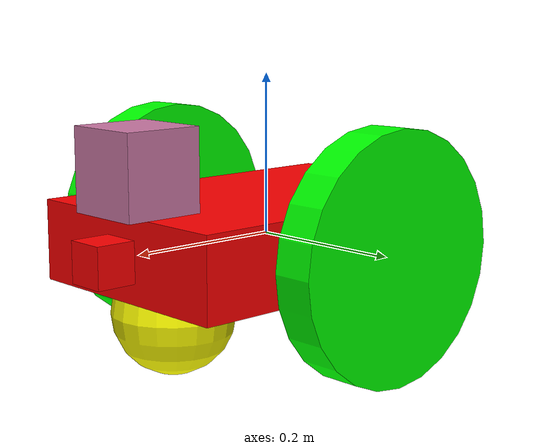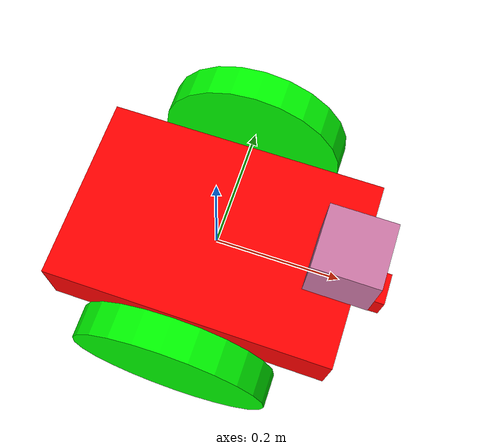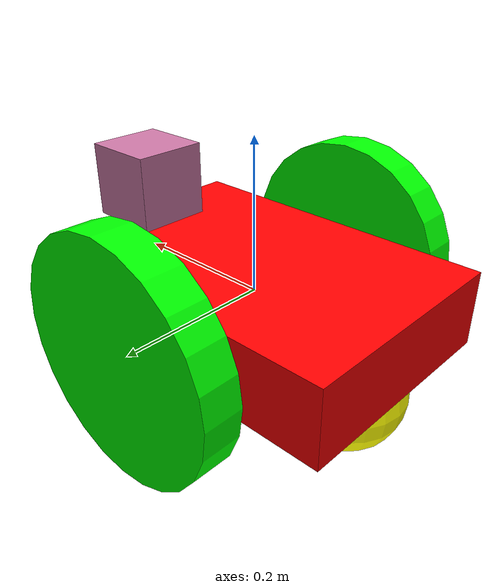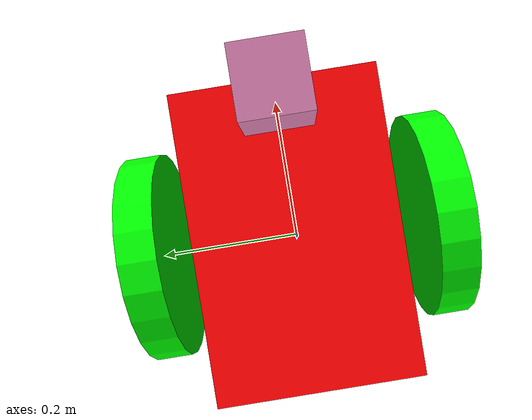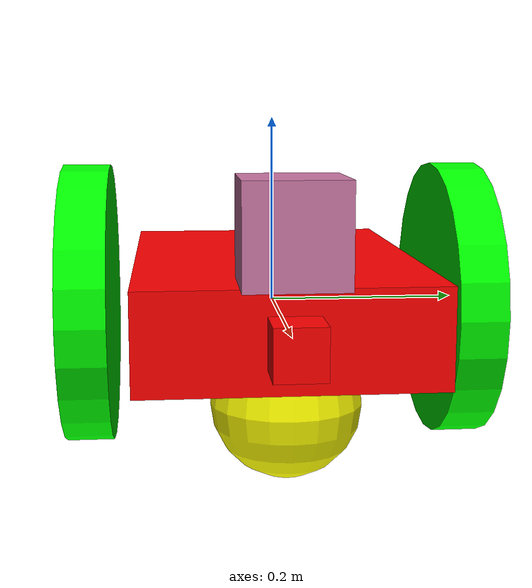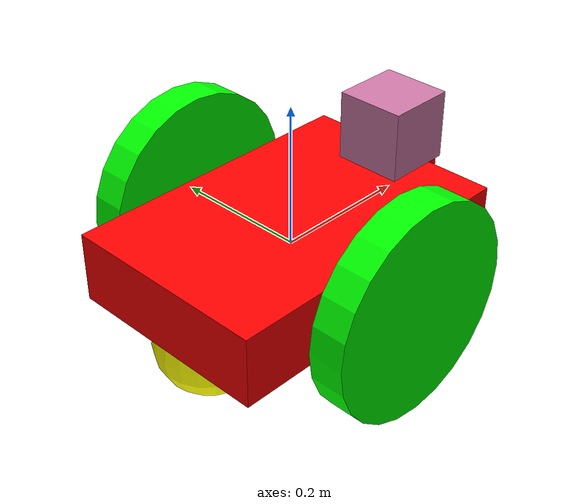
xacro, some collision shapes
<?xml version='1.0'?>
<robot name="my_robot" xmlns:xacro="http://www.ros.org/wiki/xacro">

  <xacro:include filename="$(find my_robot)/urdf/my_robot.gazebo" />
  <link name="robot_footprint"></link>
  <joint name="robot_footprint_joint" type="fixed">
    <origin xyz="0 0 0" rpy="0 0 0" />
    <parent link="robot_footprint"/>
    <child link="chassis" />
  </joint>

  <link name="chassis">
    <pose>0 0 0.1 0 0 0</pose>

    <inertial>
      <mass value="15.0"/>
      <origin xyz="0.0 0 0" rpy="0 0 0"/>
      <inertia
          ixx="0.1" ixy="0" ixz="0"
          iyy="0.1" iyz="0"
          izz="0.1"
      />
    </inertial>

    <collision name="collision">
      <origin xyz="0 0 0" rpy="0 0 0"/>
      <geometry>
        <box size="0.45 0.3 0.1"/>
      </geometry>
    </collision>

    <visual name="chassis_visual">
      <origin xyz="0 0 0" rpy="0 0 0"/>
      <geometry>
        <box size="0.45 0.3 0.1"/>
      </geometry>
      <material name="bright_red">
        <color rgba="1 0 0 1"/>
      </material>
    </visual>

    <collision name="back_caster_collision">
      <origin xyz="-0.15 0 -0.075" rpy="0 0 0"/>
      <geometry>
        <sphere radius="0.0749"/>
      </geometry>
    </collision>
    <visual name="back_caster_visual">
      <origin xyz="-0.15 0 -0.075" rpy="0 0 0"/>
      <geometry>
        <sphere radius="0.075"/>
      </geometry>
      <material name="">
        <color rgba="1 1 0 1"/>
      </material>
    </visual>

    <collision name="front_caster_collision">
      <origin xyz="0.15 0 -0.075" rpy="0 0 0"/>
      <geometry>
        <sphere radius="0.0749"/>
      </geometry>
    </collision>
    <visual name="front_caster_visual">
      <origin xyz="0.15 0 -0.075" rpy="0 0 0"/>
      <geometry>
        <sphere radius="0.075"/>
      </geometry>
      <material name="">
        <color rgba="1 1 0 1"/>
      </material>
    </visual>
  </link>
  <link name="left_wheel">
    <inertial>
      <mass value="5.0"/>
      <origin xyz="0 0 0" rpy="0 0 0"/>
      <inertia
          ixx="0.1" ixy="0" ixz="0"
          iyy="0.1" iyz="0"
          izz="0.1"
      />
    </inertial>
    <collision name="left_wheel_collision">
      <origin xyz="0 0 0" rpy="0 1.5707 1.5707"/>
      <geometry>
        <cylinder radius="0.15" length="0.05"/>
      </geometry>
    </collision>
    <visual name="left_wheel_visual">
      <origin xyz="0 0 0" rpy="0 1.5707 1.5707"/>
      <geometry>
        <cylinder radius="0.15" length="0.05"/>
      </geometry>
      <material name="Green">
        <color rgba="0 1 0 1"/>
      </material>
    </visual>
  </link>

  <!-- LEFT WHEEL JOINT -->
  <joint type="continuous" name="left_wheel_hinge">
    <origin xyz="0 0.2 0" rpy="0 0 0"/>
    <child link="left_wheel"/>
    <parent link="chassis"/>
    <axis xyz="0 1 0"/>
    <limit effort="10000" velocity="1000"/>
    <dynamics damping="1.0" friction="1.0"/>
  </joint>

  <!-- RIGHT WHEEL LINK -->
  <link name="right_wheel">
    <inertial>
      <mass value="5.0"/>
      <origin xyz="0 0 0" rpy="0 0 0"/>
      <inertia
          ixx="0.1" ixy="0" ixz="0"
          iyy="0.1" iyz="0"
          izz="0.1"
      />
    </inertial>
    <collision name="right_wheel_collision">
      <origin xyz="0 0 0" rpy="0 1.5708 1.5708"/>
      <geometry>
        <!-- Wheel radius remains 0.15 -->
        <cylinder radius="0.15" length="0.05"/>
      </geometry>
    </collision>
    <visual name="right_wheel_visual">
      <origin xyz="0 0 0" rpy="0 1.5707 1.5707"/>
      <geometry>
        <cylinder radius="0.15" length="0.05"/>
      </geometry>
      <!-- Green wheels -->
      <material name="Green">
        <color rgba="0 1 0 1"/>
      </material>
    </visual>
  </link>

  <!-- RIGHT WHEEL JOINT -->
  <joint type="continuous" name="right_wheel_hinge">
    <origin xyz="0 -0.2 0" rpy="0 0 0"/>
    <child link="right_wheel"/>
    <parent link="chassis"/>
    <axis xyz="0 1 0"/>
    <limit effort="10000" velocity="1000"/>
    <dynamics damping="1.0" friction="1.0"/>
  </joint>

  <!-- CAMERA LINK -->
  <link name="camera">
    <inertial>
      <mass value="0.1"/>
      <origin xyz="0 0 0" rpy="0 0 0"/>
      <inertia
          ixx="1e-6" ixy="0" ixz="0"
          iyy="1e-6" iyz="0"
          izz="1e-6"
      />
    </inertial>
    <collision>
      <origin xyz="0 0 0" rpy="0 0 0"/>
      <geometry>
        <box size="0.05 0.05 0.05"/>
      </geometry>
    </collision>
    <visual>
      <origin xyz="0 0 0" rpy="0 0 0"/>
      <geometry>
        <box size="0.05 0.05 0.05"/>
      </geometry>
      <material name="Red">
        <color rgba="1 0 0 1"/>
      </material>
    </visual>
  </link>

  <!-- CAMERA JOINT -->
  <joint name="camera_joint" type="fixed">
    <origin xyz="0.25 0 0" rpy="0 0 0"/>
    <parent link="chassis"/>
    <child link="camera"/>
    <axis xyz="0 1 0"/>
  </joint>

  <!-- CAMERA OPTICAL JOINT-->
  <joint name="camera_optical_joint" type="fixed">
    <origin xyz="0 0 0" rpy="-1.5707 0 -1.5707"/>
    <parent link="camera"/>
    <child link="camera_link_optical"/>
  </joint>

  <!-- CAMERA OPTICAL LINK -->
  <link name="camera_link_optical">
  </link>

  <!-- HOKUYO LIDAR LINK -->
  <link name="hokuyo">
    <inertial>
      <mass value="1e-5"/>
      <origin xyz="0 0 0" rpy="0 0 0"/>
      <inertia
          ixx="1e-6" ixy="0" ixz="0"
          iyy="1e-6" iyz="0"
          izz="1e-6"
      />
    </inertial>
    <collision>
      <origin xyz="0 0 0" rpy="0 0 0"/>
      <geometry>
        <box size="0.1 0.1 0.1"/>
      </geometry>
    </collision>
    <visual>
      <origin xyz="0 0 0" rpy="0 0 0"/>
      <geometry>
        <mesh filename="package://my_robot/meshes/hokuyo.dae"/>
      </geometry>
    </visual>
  </link>

  <!-- HOKUYO LIDAR JOINT -->
  <joint name="hokuyo_joint" type="fixed">
    <origin xyz="0.2 0 0.1" rpy="0 0 0"/>
    <parent link="chassis"/>
    <child link="hokuyo"/>
    <axis xyz="0 1 0"/>
  </joint>

  <!-- Gazebo color Chasis -->
  <gazebo reference="chassis">
    <material>Gazebo/Blue</material>
  </gazebo>

  <!-- GAZEBOleft wheel -->
    <gazebo reference="left_wheel">
      <material>Gazebo/Green</material>
    </gazebo>
  <!-- GAZEBO right wheel -->
    <gazebo reference="right_wheel">
      <material>Gazebo/Green</material>
    </gazebo>
  <!-- GAZEBO color camera -->
    <gazebo reference="camera">
      <material>Gazebo/Red</material>
    </gazebo>

</robot>
